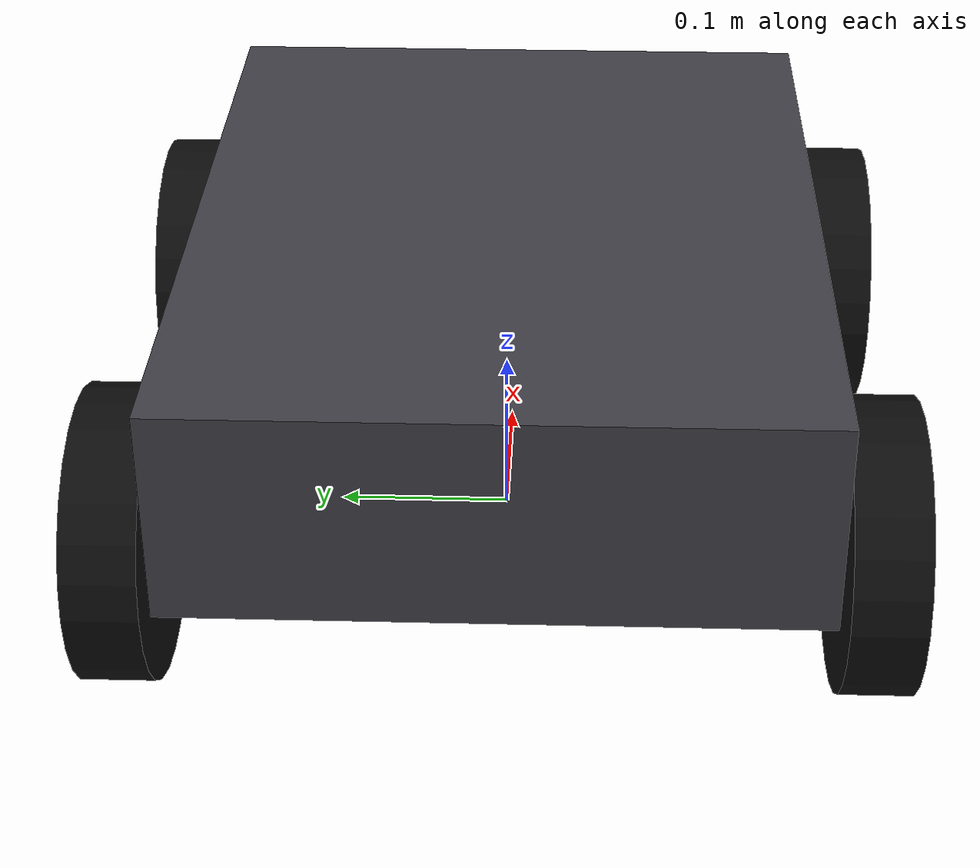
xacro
<?xml version="1.0"?>
<robot xmlns:xacro="http://www.ros.org/wiki/xacro">

  <!-- ===== Dimensions ===== -->
  <xacro:property name="chassis_l" value="0.45"/>
  <xacro:property name="chassis_w" value="0.35"/>
  <xacro:property name="chassis_h" value="0.12"/>
  <xacro:property name="chassis_density" value="700"/>
  <xacro:property name="chassis_mass"
                  value="${chassis_density * chassis_l * chassis_w * chassis_h}"/>

  <xacro:property name="wheel_r" value="0.08"/>
  <xacro:property name="wheel_h" value="0.04"/>
  <xacro:property name="wheel_density" value="1100"/>
  <xacro:property name="wheel_mass"
                  value="${wheel_density * pi * wheel_r * wheel_r * wheel_h}"/>

  <!-- Wheel placement: at corners, slightly outside chassis sides. -->
  <xacro:property name="wheel_x" value="0.15"/>
  <xacro:property name="wheel_y"
                  value="${chassis_w/2 + wheel_h/2 + 0.005}"/>

  <!-- chassis_center_z chosen so wheel axles sit at z = wheel_r. -->
  <xacro:property name="chassis_center_z" value="0.14"/>

  <!-- ===== Materials ===== -->
  <material name="chassis_grey"><color rgba="0.25 0.25 0.28 1.0"/></material>
  <material name="wheel_black">  <color rgba="0.05 0.05 0.05 1.0"/></material>

  <!-- ===== base_footprint → base_link ===== -->
  <link name="base_footprint"/>

  <joint name="base_footprint_joint" type="fixed">
    <parent link="base_footprint"/>
    <child  link="base_link"/>
    <origin xyz="0 0 ${chassis_center_z}" rpy="0 0 0"/>
  </joint>

  <link name="base_link">
    <visual>
      <origin xyz="0 0 0" rpy="0 0 0"/>
      <geometry><box size="${chassis_l} ${chassis_w} ${chassis_h}"/></geometry>
      <material name="chassis_grey"/>
    </visual>
    <collision>
      <origin xyz="0 0 0" rpy="0 0 0"/>
      <geometry><box size="${chassis_l} ${chassis_w} ${chassis_h}"/></geometry>
    </collision>
    <!-- CoM offset 2 cm below center to simulate battery low in chassis -->
    <xacro:inertial_box mass="${chassis_mass}"
                        l="${chassis_l}" w="${chassis_w}" h="${chassis_h}">
      <origin xyz="0 0 -0.02" rpy="0 0 0"/>
    </xacro:inertial_box>
  </link>

  <gazebo reference="base_link">
    <material>Gazebo/DarkGrey</material>
    <mu1>0.3</mu1>
    <mu2>0.3</mu2>
  </gazebo>

  <!-- ===== Wheel macro =====
       side: "left" or "right"  (sign of Y)
       end : "front" or "rear"  (sign of X)
  -->
  <xacro:macro name="wheel" params="name x y">
    <link name="${name}_link">
      <visual>
        <origin xyz="0 0 0" rpy="${pi/2} 0 0"/>
        <geometry><cylinder radius="${wheel_r}" length="${wheel_h}"/></geometry>
        <material name="wheel_black"/>
      </visual>
      <collision>
        <origin xyz="0 0 0" rpy="${pi/2} 0 0"/>
        <geometry><cylinder radius="${wheel_r}" length="${wheel_h}"/></geometry>
      </collision>
      <xacro:inertial_cylinder_y mass="${wheel_mass}"
                                 r="${wheel_r}" h="${wheel_h}">
        <origin xyz="0 0 0" rpy="0 0 0"/>
      </xacro:inertial_cylinder_y>
    </link>

    <joint name="${name}_joint" type="continuous">
      <parent link="base_link"/>
      <child  link="${name}_link"/>
      <!-- Wheel center placed so z_world = wheel_r. Since base_link is
           at z=chassis_center_z, the wheel must be at z=wheel_r-chassis_center_z
           in base_link frame. -->
      <origin xyz="${x} ${y} ${wheel_r - chassis_center_z}" rpy="0 0 0"/>
      <axis xyz="0 1 0"/>
      <dynamics damping="0.15" friction="0.05"/>
      <limit effort="20.0" velocity="12.0"/>
    </joint>

    <gazebo reference="${name}_link">
      <material>Gazebo/Black</material>
      <!-- High surface friction so wheels grip, low rolling resistance via
           soft contact constants. kp/kd chosen for stable contact at 1 kHz. -->
      <mu1>1.0</mu1>
      <mu2>1.0</mu2>
      <kp>1.0e6</kp>
      <kd>100.0</kd>
      <minDepth>0.001</minDepth>
      <maxVel>1.0</maxVel>
    </gazebo>
  </xacro:macro>

  <xacro:wheel name="wheel_fl" x="${ wheel_x}" y="${ wheel_y}"/>
  <xacro:wheel name="wheel_fr" x="${ wheel_x}" y="${-wheel_y}"/>
  <xacro:wheel name="wheel_rl" x="${-wheel_x}" y="${ wheel_y}"/>
  <xacro:wheel name="wheel_rr" x="${-wheel_x}" y="${-wheel_y}"/>

</robot>
